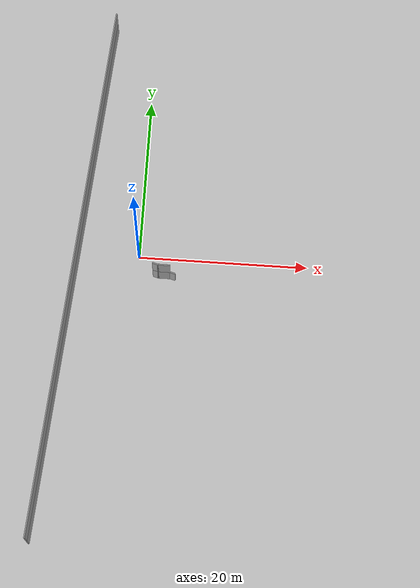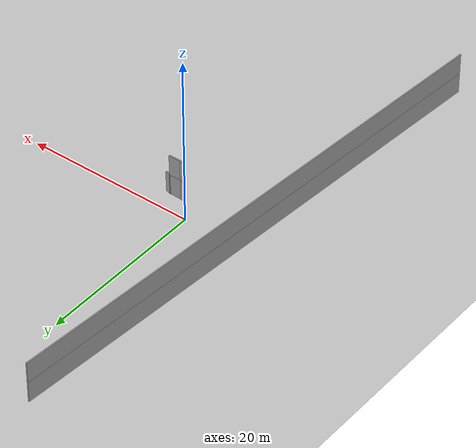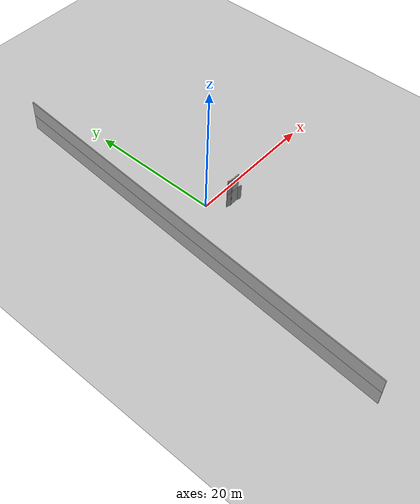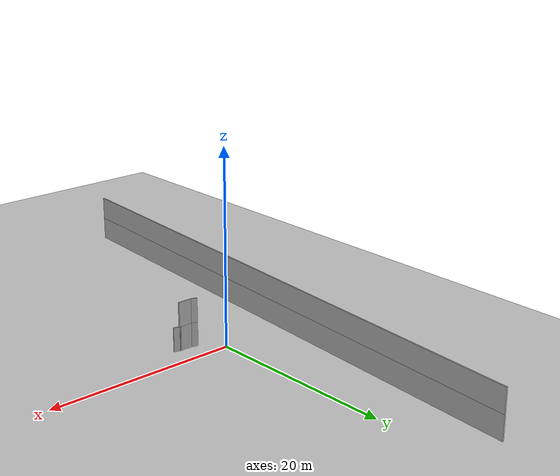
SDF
<sdf version="1.7">
 <world name="default">
  <model name="ground_plane">
   <static>1</static>
   <link name="link">
    <collision name="collision">
     <geometry><plane><normal>0 0 1</normal><size>100 100</size></plane></geometry>
     <surface>
      <contact><collide_bitmask>65535</collide_bitmask></contact>
      <friction><ode><mu>100</mu><mu2>50</mu2></ode></friction>
     </surface>
    </collision>
    <visual name="visual">
     <cast_shadows>0</cast_shadows>
     <geometry><plane><normal>0 0 1</normal><size>100 100</size></plane></geometry>
     <material>
      <script><uri>file://media/materials/scripts/gazebo.material</uri><name>Gazebo/Grey</name></script>
     </material>
    </visual>
   </link>
  </model>
  <model name="EnvDC01">
   <link name="Wall_128">
    <pose>-13.8802 3.78282 0 0 0 -1.64555</pose>
    <visual name="Wall_128_Visual">
     <pose>0 0 1.25 0 -0 0</pose>
     <geometry><box><size>64.2999 0.15 2.5</size></box></geometry>
     <material>
      <script><uri>file://media/materials/scripts/gazebo.material</uri><name>Gazebo/Grey</name></script>
      <ambient>1 1 1 1</ambient>
      <shader type="pixel"/>
     </material>
     <meta><layer>0</layer></meta>
    </visual>
    <collision name="Wall_128_Collision">
     <pose>0 0 1.25 0 -0 0</pose>
     <geometry><box><size>64.2999 0.15 2.5</size></box></geometry>
     <surface>
      <friction>
       <ode><mu>1</mu><mu2>1</mu2><fdir1>0 0 0</fdir1><slip1>0</slip1><slip2>0</slip2></ode>
       <torsional>
        <coefficient>1</coefficient>
        <patch_radius>0</patch_radius>
        <surface_radius>0</surface_radius>
        <use_patch_radius>1</use_patch_radius>
        <ode><slip>0</slip></ode>
       </torsional>
      </friction>
      <bounce><restitution_coefficient>0</restitution_coefficient><threshold>1e+06</threshold></bounce>
      <contact>
       <collide_without_contact>0</collide_without_contact>
       <collide_without_contact_bitmask>1</collide_without_contact_bitmask>
       <collide_bitmask>1</collide_bitmask>
       <ode>
        <soft_cfm>0</soft_cfm>
        <soft_erp>0.2</soft_erp>
        <kp>1e+13</kp>
        <kd>1</kd>
        <max_vel>0.01</max_vel>
        <min_depth>0</min_depth>
       </ode>
       <bullet>
        <split_impulse>1</split_impulse>
        <split_impulse_penetration_threshold>-0.01</split_impulse_penetration_threshold>
        <soft_cfm>0</soft_cfm>
        <soft_erp>0.2</soft_erp>
        <kp>1e+13</kp>
        <kd>1</kd>
       </bullet>
      </contact>
     </surface>
    </collision>
   </link>
   <link name="Wall_164">
    <pose>-2.44248 3.83653 0 0 -0 2.87979</pose>
    <visual name="Wall_164_Visual">
     <pose>0 0 1.25 0 -0 0</pose>
     <geometry><box><size>0.75 0.15 2.5</size></box></geometry>
     <material>
      <script><uri>file://media/materials/scripts/gazebo.material</uri><name>Gazebo/Grey</name></script>
      <ambient>1 1 1 1</ambient>
      <shader type="pixel"/>
     </material>
     <meta><layer>0</layer></meta>
    </visual>
    <collision name="Wall_164_Collision">
     <pose>0 0 1.25 0 -0 0</pose>
     <geometry><box><size>0.75 0.15 2.5</size></box></geometry>
     <surface>
      <friction>
       <ode><mu>1</mu><mu2>1</mu2><fdir1>0 0 0</fdir1><slip1>0</slip1><slip2>0</slip2></ode>
       <torsional>
        <coefficient>1</coefficient>
        <patch_radius>0</patch_radius>
        <surface_radius>0</surface_radius>
        <use_patch_radius>1</use_patch_radius>
        <ode><slip>0</slip></ode>
       </torsional>
      </friction>
      <bounce><restitution_coefficient>0</restitution_coefficient><threshold>1e+06</threshold></bounce>
      <contact>
       <collide_without_contact>0</collide_without_contact>
       <collide_without_contact_bitmask>1</collide_without_contact_bitmask>
       <collide_bitmask>1</collide_bitmask>
       <ode>
        <soft_cfm>0</soft_cfm>
        <soft_erp>0.2</soft_erp>
        <kp>1e+13</kp>
        <kd>1</kd>
        <max_vel>0.01</max_vel>
        <min_depth>0</min_depth>
       </ode>
       <bullet>
        <split_impulse>1</split_impulse>
        <split_impulse_penetration_threshold>-0.01</split_impulse_penetration_threshold>
        <soft_cfm>0</soft_cfm>
        <soft_erp>0.2</soft_erp>
        <kp>1e+13</kp>
        <kd>1</kd>
       </bullet>
      </contact>
     </surface>
    </collision>
   </link>
   <link name="Wall_165">
    <pose>-3.40726 3.91418 0 0 -0 3.14159</pose>
    <visual name="Wall_165_Visual">
     <pose>0 0 1.25 0 -0 0</pose>
     <geometry><box><size>1.5 0.15 2.5</size></box></geometry>
     <material>
      <script><uri>file://media/materials/scripts/gazebo.material</uri><name>Gazebo/Grey</name></script>
      <ambient>1 1 1 1</ambient>
      <shader type="pixel"/>
     </material>
     <meta><layer>0</layer></meta>
    </visual>
    <collision name="Wall_165_Collision">
     <pose>0 0 1.25 0 -0 0</pose>
     <geometry><box><size>1.5 0.15 2.5</size></box></geometry>
     <surface>
      <friction>
       <ode><mu>1</mu><mu2>1</mu2><fdir1>0 0 0</fdir1><slip1>0</slip1><slip2>0</slip2></ode>
       <torsional>
        <coefficient>1</coefficient>
        <patch_radius>0</patch_radius>
        <surface_radius>0</surface_radius>
        <use_patch_radius>1</use_patch_radius>
        <ode><slip>0</slip></ode>
       </torsional>
      </friction>
      <bounce><restitution_coefficient>0</restitution_coefficient><threshold>1e+06</threshold></bounce>
      <contact>
       <collide_without_contact>0</collide_without_contact>
       <collide_without_contact_bitmask>1</collide_without_contact_bitmask>
       <collide_bitmask>1</collide_bitmask>
       <ode>
        <soft_cfm>0</soft_cfm>
        <soft_erp>0.2</soft_erp>
        <kp>1e+13</kp>
        <kd>1</kd>
        <max_vel>0.01</max_vel>
        <min_depth>0</min_depth>
       </ode>
       <bullet>
        <split_impulse>1</split_impulse>
        <split_impulse_penetration_threshold>-0.01</split_impulse_penetration_threshold>
        <soft_cfm>0</soft_cfm>
        <soft_erp>0.2</soft_erp>
        <kp>1e+13</kp>
        <kd>1</kd>
       </bullet>
      </contact>
     </surface>
    </collision>
   </link>
   <link name="Wall_166">
    <pose>-4.37204 3.99183 0 0 -0 2.87979</pose>
    <visual name="Wall_166_Visual">
     <pose>0 0 1.25 0 -0 0</pose>
     <geometry><box><size>0.75 0.15 2.5</size></box></geometry>
     <material>
      <script><uri>file://media/materials/scripts/gazebo.material</uri><name>Gazebo/Grey</name></script>
      <ambient>1 1 1 1</ambient>
      <shader type="pixel"/>
     </material>
     <meta><layer>0</layer></meta>
    </visual>
    <collision name="Wall_166_Collision">
     <pose>0 0 1.25 0 -0 0</pose>
     <geometry><box><size>0.75 0.15 2.5</size></box></geometry>
     <surface>
      <friction>
       <ode><mu>1</mu><mu2>1</mu2><fdir1>0 0 0</fdir1><slip1>0</slip1><slip2>0</slip2></ode>
       <torsional>
        <coefficient>1</coefficient>
        <patch_radius>0</patch_radius>
        <surface_radius>0</surface_radius>
        <use_patch_radius>1</use_patch_radius>
        <ode><slip>0</slip></ode>
       </torsional>
      </friction>
      <bounce><restitution_coefficient>0</restitution_coefficient><threshold>1e+06</threshold></bounce>
      <contact>
       <collide_without_contact>0</collide_without_contact>
       <collide_without_contact_bitmask>1</collide_without_contact_bitmask>
       <collide_bitmask>1</collide_bitmask>
       <ode>
        <soft_cfm>0</soft_cfm>
        <soft_erp>0.2</soft_erp>
        <kp>1e+13</kp>
        <kd>1</kd>
        <max_vel>0.01</max_vel>
        <min_depth>0</min_depth>
       </ode>
       <bullet>
        <split_impulse>1</split_impulse>
        <split_impulse_penetration_threshold>-0.01</split_impulse_penetration_threshold>
        <soft_cfm>0</soft_cfm>
        <soft_erp>0.2</soft_erp>
        <kp>1e+13</kp>
        <kd>1</kd>
       </bullet>
      </contact>
     </surface>
    </collision>
   </link>
   <link name="Wall_327">
    <pose>-13.8802 3.78282 2.5 0 0 -1.64555</pose>
    <visual name="Wall_327_Visual">
     <pose>0 0 1.25 0 -0 0</pose>
     <geometry><box><size>64.2999 0.15 2.5</size></box></geometry>
     <material>
      <script><uri>file://media/materials/scripts/gazebo.material</uri><name>Gazebo/Grey</name></script>
      <ambient>1 1 1 1</ambient>
      <shader type="pixel"/>
     </material>
     <meta><layer>1</layer></meta>
    </visual>
    <collision name="Wall_327_Collision">
     <pose>0 0 1.25 0 -0 0</pose>
     <geometry><box><size>64.2999 0.15 2.5</size></box></geometry>
     <surface>
      <friction>
       <ode><mu>1</mu><mu2>1</mu2><fdir1>0 0 0</fdir1><slip1>0</slip1><slip2>0</slip2></ode>
       <torsional>
        <coefficient>1</coefficient>
        <patch_radius>0</patch_radius>
        <surface_radius>0</surface_radius>
        <use_patch_radius>1</use_patch_radius>
        <ode><slip>0</slip></ode>
       </torsional>
      </friction>
      <bounce><restitution_coefficient>0</restitution_coefficient><threshold>1e+06</threshold></bounce>
      <contact>
       <collide_without_contact>0</collide_without_contact>
       <collide_without_contact_bitmask>1</collide_without_contact_bitmask>
       <collide_bitmask>1</collide_bitmask>
       <ode>
        <soft_cfm>0</soft_cfm>
        <soft_erp>0.2</soft_erp>
        <kp>1e+13</kp>
        <kd>1</kd>
        <max_vel>0.01</max_vel>
        <min_depth>0</min_depth>
       </ode>
       <bullet>
        <split_impulse>1</split_impulse>
        <split_impulse_penetration_threshold>-0.01</split_impulse_penetration_threshold>
        <soft_cfm>0</soft_cfm>
        <soft_erp>0.2</soft_erp>
        <kp>1e+13</kp>
        <kd>1</kd>
       </bullet>
      </contact>
     </surface>
    </collision>
   </link>
   <link name="Wall_353">
    <pose>-3.40726 3.91418 2.5 0 -0 3.14159</pose>
    <visual name="Wall_353_Visual">
     <pose>0 0 1.25 0 -0 0</pose>
     <geometry><box><size>1.5 0.15 2.5</size></box></geometry>
     <material>
      <script><uri>file://media/materials/scripts/gazebo.material</uri><name>Gazebo/Grey</name></script>
      <ambient>1 1 1 1</ambient>
      <shader type="pixel"/>
     </material>
     <meta><layer>1</layer></meta>
    </visual>
    <collision name="Wall_353_Collision">
     <pose>0 0 1.25 0 -0 0</pose>
     <geometry><box><size>1.5 0.15 2.5</size></box></geometry>
     <surface>
      <friction>
       <ode><mu>1</mu><mu2>1</mu2><fdir1>0 0 0</fdir1><slip1>0</slip1><slip2>0</slip2></ode>
       <torsional>
        <coefficient>1</coefficient>
        <patch_radius>0</patch_radius>
        <surface_radius>0</surface_radius>
        <use_patch_radius>1</use_patch_radius>
        <ode><slip>0</slip></ode>
       </torsional>
      </friction>
      <bounce><restitution_coefficient>0</restitution_coefficient><threshold>1e+06</threshold></bounce>
      <contact>
       <collide_without_contact>0</collide_without_contact>
       <collide_without_contact_bitmask>1</collide_without_contact_bitmask>
       <collide_bitmask>1</collide_bitmask>
       <ode>
        <soft_cfm>0</soft_cfm>
        <soft_erp>0.2</soft_erp>
        <kp>1e+13</kp>
        <kd>1</kd>
        <max_vel>0.01</max_vel>
        <min_depth>0</min_depth>
       </ode>
       <bullet>
        <split_impulse>1</split_impulse>
        <split_impulse_penetration_threshold>-0.01</split_impulse_penetration_threshold>
        <soft_cfm>0</soft_cfm>
        <soft_erp>0.2</soft_erp>
        <kp>1e+13</kp>
        <kd>1</kd>
       </bullet>
      </contact>
     </surface>
    </collision>
   </link>
   <link name="Wall_354">
    <pose>-4.37204 3.99183 2.5 0 -0 2.87979</pose>
    <visual name="Wall_354_Visual">
     <pose>0 0 1.25 0 -0 0</pose>
     <geometry><box><size>0.75 0.15 2.5</size></box></geometry>
     <material>
      <script><uri>file://media/materials/scripts/gazebo.material</uri><name>Gazebo/Grey</name></script>
      <ambient>1 1 1 1</ambient>
      <shader type="pixel"/>
     </material>
     <meta><layer>1</layer></meta>
    </visual>
    <collision name="Wall_354_Collision">
     <pose>0 0 1.25 0 -0 0</pose>
     <geometry><box><size>0.75 0.15 2.5</size></box></geometry>
     <surface>
      <friction>
       <ode><mu>1</mu><mu2>1</mu2><fdir1>0 0 0</fdir1><slip1>0</slip1><slip2>0</slip2></ode>
       <torsional>
        <coefficient>1</coefficient>
        <patch_radius>0</patch_radius>
        <surface_radius>0</surface_radius>
        <use_patch_radius>1</use_patch_radius>
        <ode><slip>0</slip></ode>
       </torsional>
      </friction>
      <bounce><restitution_coefficient>0</restitution_coefficient><threshold>1e+06</threshold></bounce>
      <contact>
       <collide_without_contact>0</collide_without_contact>
       <collide_without_contact_bitmask>1</collide_without_contact_bitmask>
       <collide_bitmask>1</collide_bitmask>
       <ode>
        <soft_cfm>0</soft_cfm>
        <soft_erp>0.2</soft_erp>
        <kp>1e+13</kp>
        <kd>1</kd>
        <max_vel>0.01</max_vel>
        <min_depth>0</min_depth>
       </ode>
       <bullet>
        <split_impulse>1</split_impulse>
        <split_impulse_penetration_threshold>-0.01</split_impulse_penetration_threshold>
        <soft_cfm>0</soft_cfm>
        <soft_erp>0.2</soft_erp>
        <kp>1e+13</kp>
        <kd>1</kd>
       </bullet>
      </contact>
     </surface>
    </collision>
   </link>
   <static>1</static>
   <pose>6.55365 -6.2466 0 0 -0 0</pose>
  </model>
 </world>
</sdf>
